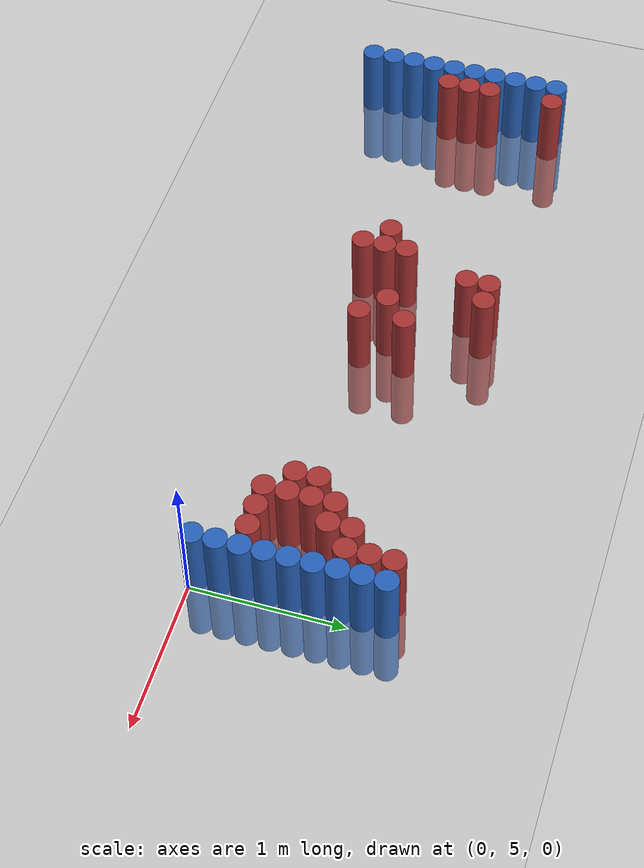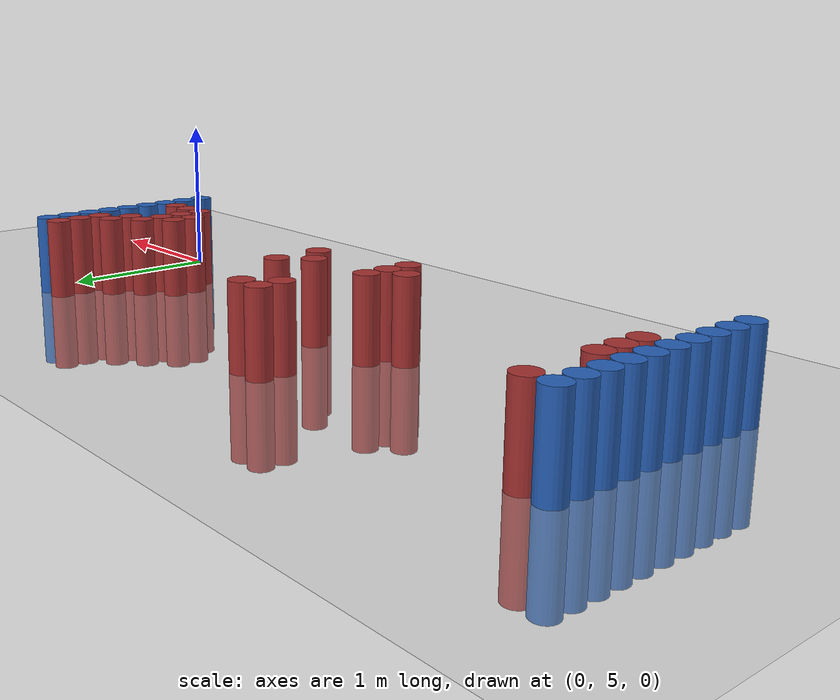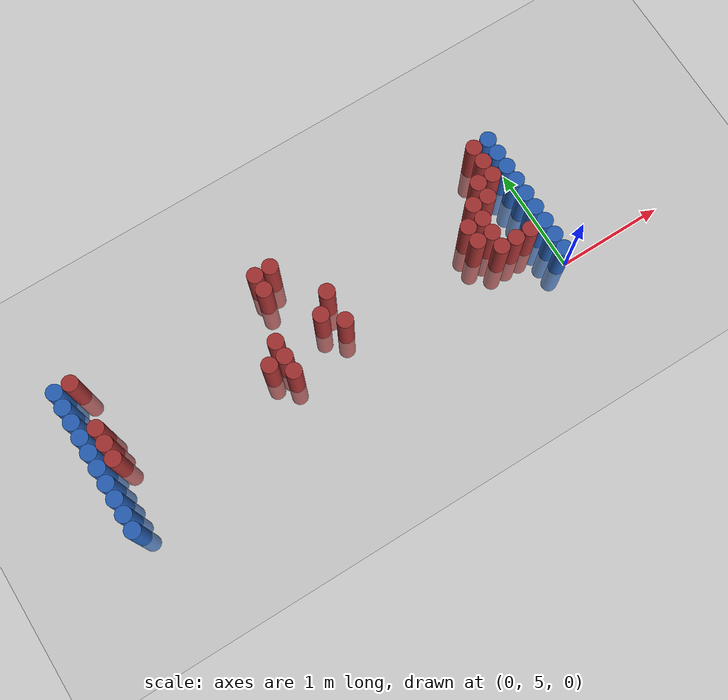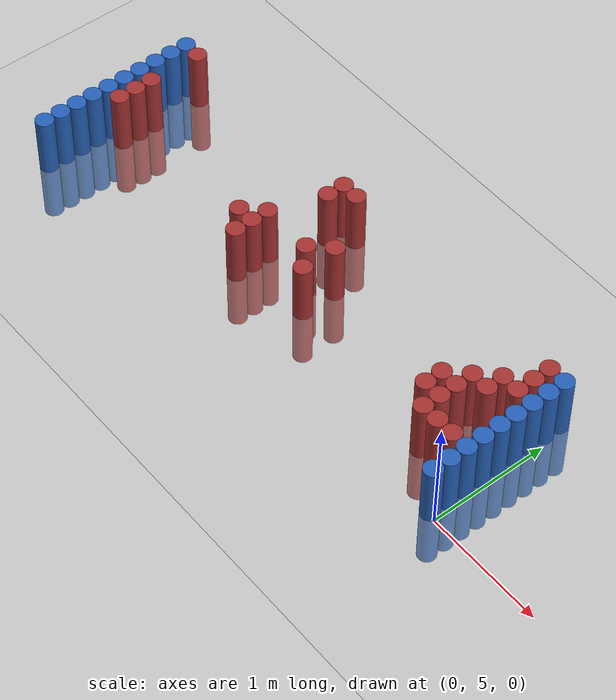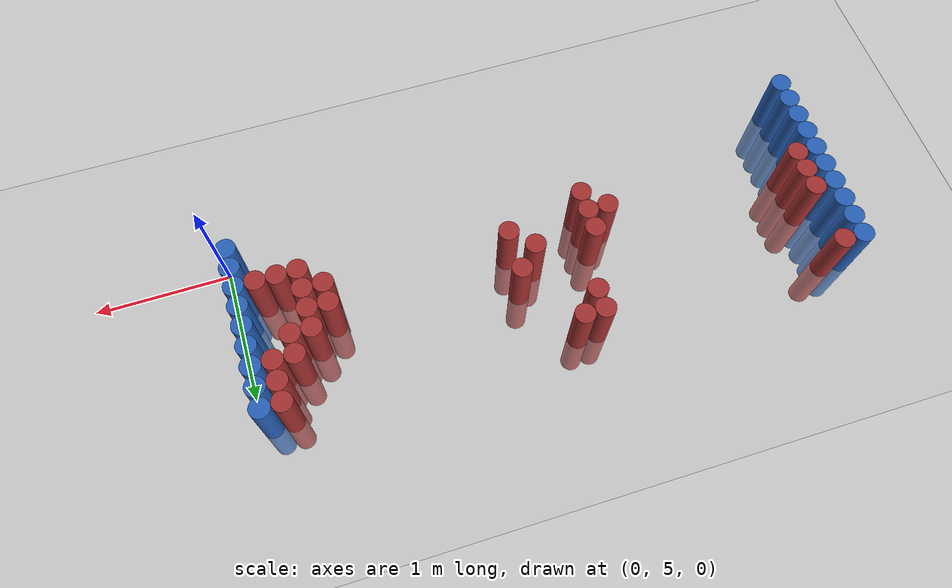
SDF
<sdf version="1.6">
 <world name="default">
  <model name="ground_plane">
   <static>1</static>
   <link name="link">
    <collision name="collision">
     <geometry><plane><normal>0 0 1</normal><size>100 100</size></plane></geometry>
     <surface><friction><ode><mu>100</mu><mu2>50</mu2></ode></friction></surface>
    </collision>
    <visual name="visual">
     <cast_shadows>0</cast_shadows>
     <geometry><plane><normal>0 0 1</normal><size>100 100</size></plane></geometry>
     <material>
      <script><uri>file://media/materials/scripts/gazebo.material</uri><name>Gazebo/Grey</name></script>
     </material>
    </visual>
   </link>
  </model>
  <model name="unit_cylinder_93">
   <static>1</static>
   <pose>-4.425000 4.875000 0.000000 0.000000 0.000000 0.000000</pose>
   <link name="link">
    <inertial>
     <mass>1</mass>
     <inertia><ixx>0.145833</ixx><ixy>0</ixy><ixz>0</ixz><iyy>0.145833</iyy><iyz>0</iyz><izz>0.125</izz></inertia>
    </inertial>
    <collision name="collision">
     <geometry><cylinder><radius>0.075000</radius><length>1</length></cylinder></geometry>
    </collision>
    <visual name="visual">
     <geometry><cylinder><radius>0.075000</radius><length>1</length></cylinder></geometry>
     <material>
      <ambient>0.152000 0.379000 0.720000 1</ambient>
      <diffuse>0.152000 0.379000 0.720000 1</diffuse>
     </material>
     <material>
      <script><name>Gazebo/Grey</name><uri>file://media/materials/scripts/gazebo.material</uri></script>
     </material>
    </visual>
   </link>
  </model>
  <model name="unit_cylinder_94">
   <static>1</static>
   <pose>-0.075000 5.025000 0.000000 0.000000 0.000000 0.000000</pose>
   <link name="link">
    <inertial>
     <mass>1</mass>
     <inertia><ixx>0.145833</ixx><ixy>0</ixy><ixz>0</ixz><iyy>0.145833</iyy><iyz>0</iyz><izz>0.125</izz></inertia>
    </inertial>
    <collision name="collision">
     <geometry><cylinder><radius>0.075000</radius><length>1</length></cylinder></geometry>
    </collision>
    <visual name="visual">
     <geometry><cylinder><radius>0.075000</radius><length>1</length></cylinder></geometry>
     <material>
      <ambient>0.152000 0.379000 0.720000 1</ambient>
      <diffuse>0.152000 0.379000 0.720000 1</diffuse>
     </material>
     <material>
      <script><name>Gazebo/Grey</name><uri>file://media/materials/scripts/gazebo.material</uri></script>
     </material>
    </visual>
   </link>
  </model>
  <model name="unit_cylinder_95">
   <static>1</static>
   <pose>-4.425000 5.025000 0.000000 0.000000 0.000000 0.000000</pose>
   <link name="link">
    <inertial>
     <mass>1</mass>
     <inertia><ixx>0.145833</ixx><ixy>0</ixy><ixz>0</ixz><iyy>0.145833</iyy><iyz>0</iyz><izz>0.125</izz></inertia>
    </inertial>
    <collision name="collision">
     <geometry><cylinder><radius>0.075000</radius><length>1</length></cylinder></geometry>
    </collision>
    <visual name="visual">
     <geometry><cylinder><radius>0.075000</radius><length>1</length></cylinder></geometry>
     <material>
      <ambient>0.152000 0.379000 0.720000 1</ambient>
      <diffuse>0.152000 0.379000 0.720000 1</diffuse>
     </material>
     <material>
      <script><name>Gazebo/Grey</name><uri>file://media/materials/scripts/gazebo.material</uri></script>
     </material>
    </visual>
   </link>
  </model>
  <model name="unit_cylinder_96">
   <static>1</static>
   <pose>-4.425000 5.175000 0.000000 0.000000 0.000000 0.000000</pose>
   <link name="link">
    <inertial>
     <mass>1</mass>
     <inertia><ixx>0.145833</ixx><ixy>0</ixy><ixz>0</ixz><iyy>0.145833</iyy><iyz>0</iyz><izz>0.125</izz></inertia>
    </inertial>
    <collision name="collision">
     <geometry><cylinder><radius>0.075000</radius><length>1</length></cylinder></geometry>
    </collision>
    <visual name="visual">
     <geometry><cylinder><radius>0.075000</radius><length>1</length></cylinder></geometry>
     <material>
      <ambient>0.152000 0.379000 0.720000 1</ambient>
      <diffuse>0.152000 0.379000 0.720000 1</diffuse>
     </material>
     <material>
      <script><name>Gazebo/Grey</name><uri>file://media/materials/scripts/gazebo.material</uri></script>
     </material>
    </visual>
   </link>
  </model>
  <model name="unit_cylinder_97">
   <static>1</static>
   <pose>-4.425000 5.325000 0.000000 0.000000 0.000000 0.000000</pose>
   <link name="link">
    <inertial>
     <mass>1</mass>
     <inertia><ixx>0.145833</ixx><ixy>0</ixy><ixz>0</ixz><iyy>0.145833</iyy><iyz>0</iyz><izz>0.125</izz></inertia>
    </inertial>
    <collision name="collision">
     <geometry><cylinder><radius>0.075000</radius><length>1</length></cylinder></geometry>
    </collision>
    <visual name="visual">
     <geometry><cylinder><radius>0.075000</radius><length>1</length></cylinder></geometry>
     <material>
      <ambient>0.152000 0.379000 0.720000 1</ambient>
      <diffuse>0.152000 0.379000 0.720000 1</diffuse>
     </material>
     <material>
      <script><name>Gazebo/Grey</name><uri>file://media/materials/scripts/gazebo.material</uri></script>
     </material>
    </visual>
   </link>
  </model>
  <model name="unit_cylinder_98">
   <static>1</static>
   <pose>-4.425000 5.475000 0.000000 0.000000 0.000000 0.000000</pose>
   <link name="link">
    <inertial>
     <mass>1</mass>
     <inertia><ixx>0.145833</ixx><ixy>0</ixy><ixz>0</ixz><iyy>0.145833</iyy><iyz>0</iyz><izz>0.125</izz></inertia>
    </inertial>
    <collision name="collision">
     <geometry><cylinder><radius>0.075000</radius><length>1</length></cylinder></geometry>
    </collision>
    <visual name="visual">
     <geometry><cylinder><radius>0.075000</radius><length>1</length></cylinder></geometry>
     <material>
      <ambient>0.152000 0.379000 0.720000 1</ambient>
      <diffuse>0.152000 0.379000 0.720000 1</diffuse>
     </material>
     <material>
      <script><name>Gazebo/Grey</name><uri>file://media/materials/scripts/gazebo.material</uri></script>
     </material>
    </visual>
   </link>
  </model>
  <model name="unit_cylinder_99">
   <static>1</static>
   <pose>-4.425000 5.625000 0.000000 0.000000 0.000000 0.000000</pose>
   <link name="link">
    <inertial>
     <mass>1</mass>
     <inertia><ixx>0.145833</ixx><ixy>0</ixy><ixz>0</ixz><iyy>0.145833</iyy><iyz>0</iyz><izz>0.125</izz></inertia>
    </inertial>
    <collision name="collision">
     <geometry><cylinder><radius>0.075000</radius><length>1</length></cylinder></geometry>
    </collision>
    <visual name="visual">
     <geometry><cylinder><radius>0.075000</radius><length>1</length></cylinder></geometry>
     <material>
      <ambient>0.152000 0.379000 0.720000 1</ambient>
      <diffuse>0.152000 0.379000 0.720000 1</diffuse>
     </material>
     <material>
      <script><name>Gazebo/Grey</name><uri>file://media/materials/scripts/gazebo.material</uri></script>
     </material>
    </visual>
   </link>
  </model>
  <model name="unit_cylinder_100">
   <static>1</static>
   <pose>-4.425000 5.775000 0.000000 0.000000 0.000000 0.000000</pose>
   <link name="link">
    <inertial>
     <mass>1</mass>
     <inertia><ixx>0.145833</ixx><ixy>0</ixy><ixz>0</ixz><iyy>0.145833</iyy><iyz>0</iyz><izz>0.125</izz></inertia>
    </inertial>
    <collision name="collision">
     <geometry><cylinder><radius>0.075000</radius><length>1</length></cylinder></geometry>
    </collision>
    <visual name="visual">
     <geometry><cylinder><radius>0.075000</radius><length>1</length></cylinder></geometry>
     <material>
      <ambient>0.152000 0.379000 0.720000 1</ambient>
      <diffuse>0.152000 0.379000 0.720000 1</diffuse>
     </material>
     <material>
      <script><name>Gazebo/Grey</name><uri>file://media/materials/scripts/gazebo.material</uri></script>
     </material>
    </visual>
   </link>
  </model>
  <model name="unit_cylinder_101">
   <static>1</static>
   <pose>-4.425000 5.925000 0.000000 0.000000 0.000000 0.000000</pose>
   <link name="link">
    <inertial>
     <mass>1</mass>
     <inertia><ixx>0.145833</ixx><ixy>0</ixy><ixz>0</ixz><iyy>0.145833</iyy><iyz>0</iyz><izz>0.125</izz></inertia>
    </inertial>
    <collision name="collision">
     <geometry><cylinder><radius>0.075000</radius><length>1</length></cylinder></geometry>
    </collision>
    <visual name="visual">
     <geometry><cylinder><radius>0.075000</radius><length>1</length></cylinder></geometry>
     <material>
      <ambient>0.152000 0.379000 0.720000 1</ambient>
      <diffuse>0.152000 0.379000 0.720000 1</diffuse>
     </material>
     <material>
      <script><name>Gazebo/Grey</name><uri>file://media/materials/scripts/gazebo.material</uri></script>
     </material>
    </visual>
   </link>
  </model>
  <model name="unit_cylinder_102">
   <static>1</static>
   <pose>-4.425000 6.075000 0.000000 0.000000 0.000000 0.000000</pose>
   <link name="link">
    <inertial>
     <mass>1</mass>
     <inertia><ixx>0.145833</ixx><ixy>0</ixy><ixz>0</ixz><iyy>0.145833</iyy><iyz>0</iyz><izz>0.125</izz></inertia>
    </inertial>
    <collision name="collision">
     <geometry><cylinder><radius>0.075000</radius><length>1</length></cylinder></geometry>
    </collision>
    <visual name="visual">
     <geometry><cylinder><radius>0.075000</radius><length>1</length></cylinder></geometry>
     <material>
      <ambient>0.152000 0.379000 0.720000 1</ambient>
      <diffuse>0.152000 0.379000 0.720000 1</diffuse>
     </material>
     <material>
      <script><name>Gazebo/Grey</name><uri>file://media/materials/scripts/gazebo.material</uri></script>
     </material>
    </visual>
   </link>
  </model>
  <model name="unit_cylinder_103">
   <static>1</static>
   <pose>-4.425000 6.225000 0.000000 0.000000 0.000000 0.000000</pose>
   <link name="link">
    <inertial>
     <mass>1</mass>
     <inertia><ixx>0.145833</ixx><ixy>0</ixy><ixz>0</ixz><iyy>0.145833</iyy><iyz>0</iyz><izz>0.125</izz></inertia>
    </inertial>
    <collision name="collision">
     <geometry><cylinder><radius>0.075000</radius><length>1</length></cylinder></geometry>
    </collision>
    <visual name="visual">
     <geometry><cylinder><radius>0.075000</radius><length>1</length></cylinder></geometry>
     <material>
      <ambient>0.152000 0.379000 0.720000 1</ambient>
      <diffuse>0.152000 0.379000 0.720000 1</diffuse>
     </material>
     <material>
      <script><name>Gazebo/Grey</name><uri>file://media/materials/scripts/gazebo.material</uri></script>
     </material>
    </visual>
   </link>
  </model>
  <model name="unit_cylinder_126">
   <static>1</static>
   <pose>-4.275000 5.475000 0.000000 0.000000 0.000000 0.000000</pose>
   <link name="link">
    <inertial>
     <mass>1</mass>
     <inertia><ixx>0.145833</ixx><ixy>0</ixy><ixz>0</ixz><iyy>0.145833</iyy><iyz>0</iyz><izz>0.125</izz></inertia>
    </inertial>
    <collision name="collision">
     <geometry><cylinder><radius>0.075000</radius><length>1</length></cylinder></geometry>
    </collision>
    <visual name="visual">
     <geometry><cylinder><radius>0.075000</radius><length>1</length></cylinder></geometry>
     <material>
      <ambient>0.648000 0.192000 0.192000 1</ambient>
      <diffuse>0.648000 0.192000 0.192000 1</diffuse>
     </material>
     <material>
      <script><name>Gazebo/Grey</name><uri>file://media/materials/scripts/gazebo.material</uri></script>
     </material>
    </visual>
   </link>
  </model>
  <model name="unit_cylinder_127">
   <static>1</static>
   <pose>-4.275000 5.625000 0.000000 0.000000 0.000000 0.000000</pose>
   <link name="link">
    <inertial>
     <mass>1</mass>
     <inertia><ixx>0.145833</ixx><ixy>0</ixy><ixz>0</ixz><iyy>0.145833</iyy><iyz>0</iyz><izz>0.125</izz></inertia>
    </inertial>
    <collision name="collision">
     <geometry><cylinder><radius>0.075000</radius><length>1</length></cylinder></geometry>
    </collision>
    <visual name="visual">
     <geometry><cylinder><radius>0.075000</radius><length>1</length></cylinder></geometry>
     <material>
      <ambient>0.648000 0.192000 0.192000 1</ambient>
      <diffuse>0.648000 0.192000 0.192000 1</diffuse>
     </material>
     <material>
      <script><name>Gazebo/Grey</name><uri>file://media/materials/scripts/gazebo.material</uri></script>
     </material>
    </visual>
   </link>
  </model>
  <model name="unit_cylinder_128">
   <static>1</static>
   <pose>-4.275000 5.775000 0.000000 0.000000 0.000000 0.000000</pose>
   <link name="link">
    <inertial>
     <mass>1</mass>
     <inertia><ixx>0.145833</ixx><ixy>0</ixy><ixz>0</ixz><iyy>0.145833</iyy><iyz>0</iyz><izz>0.125</izz></inertia>
    </inertial>
    <collision name="collision">
     <geometry><cylinder><radius>0.075000</radius><length>1</length></cylinder></geometry>
    </collision>
    <visual name="visual">
     <geometry><cylinder><radius>0.075000</radius><length>1</length></cylinder></geometry>
     <material>
      <ambient>0.648000 0.192000 0.192000 1</ambient>
      <diffuse>0.648000 0.192000 0.192000 1</diffuse>
     </material>
     <material>
      <script><name>Gazebo/Grey</name><uri>file://media/materials/scripts/gazebo.material</uri></script>
     </material>
    </visual>
   </link>
  </model>
  <model name="unit_cylinder_129">
   <static>1</static>
   <pose>-4.275000 6.225000 0.000000 0.000000 0.000000 0.000000</pose>
   <link name="link">
    <inertial>
     <mass>1</mass>
     <inertia><ixx>0.145833</ixx><ixy>0</ixy><ixz>0</ixz><iyy>0.145833</iyy><iyz>0</iyz><izz>0.125</izz></inertia>
    </inertial>
    <collision name="collision">
     <geometry><cylinder><radius>0.075000</radius><length>1</length></cylinder></geometry>
    </collision>
    <visual name="visual">
     <geometry><cylinder><radius>0.075000</radius><length>1</length></cylinder></geometry>
     <material>
      <ambient>0.648000 0.192000 0.192000 1</ambient>
      <diffuse>0.648000 0.192000 0.192000 1</diffuse>
     </material>
     <material>
      <script><name>Gazebo/Grey</name><uri>file://media/materials/scripts/gazebo.material</uri></script>
     </material>
    </visual>
   </link>
  </model>
  <model name="unit_cylinder_173">
   <static>1</static>
   <pose>-2.775000 5.475000 0.000000 0.000000 0.000000 0.000000</pose>
   <link name="link">
    <inertial>
     <mass>1</mass>
     <inertia><ixx>0.145833</ixx><ixy>0</ixy><ixz>0</ixz><iyy>0.145833</iyy><iyz>0</iyz><izz>0.125</izz></inertia>
    </inertial>
    <collision name="collision">
     <geometry><cylinder><radius>0.075000</radius><length>1</length></cylinder></geometry>
    </collision>
    <visual name="visual">
     <geometry><cylinder><radius>0.075000</radius><length>1</length></cylinder></geometry>
     <material>
      <ambient>0.648000 0.192000 0.192000 1</ambient>
      <diffuse>0.648000 0.192000 0.192000 1</diffuse>
     </material>
     <material>
      <script><name>Gazebo/Grey</name><uri>file://media/materials/scripts/gazebo.material</uri></script>
     </material>
    </visual>
   </link>
  </model>
  <model name="unit_cylinder_178">
   <static>1</static>
   <pose>-2.625000 5.325000 0.000000 0.000000 0.000000 0.000000</pose>
   <link name="link">
    <inertial>
     <mass>1</mass>
     <inertia><ixx>0.145833</ixx><ixy>0</ixy><ixz>0</ixz><iyy>0.145833</iyy><iyz>0</iyz><izz>0.125</izz></inertia>
    </inertial>
    <collision name="collision">
     <geometry><cylinder><radius>0.075000</radius><length>1</length></cylinder></geometry>
    </collision>
    <visual name="visual">
     <geometry><cylinder><radius>0.075000</radius><length>1</length></cylinder></geometry>
     <material>
      <ambient>0.648000 0.192000 0.192000 1</ambient>
      <diffuse>0.648000 0.192000 0.192000 1</diffuse>
     </material>
     <material>
      <script><name>Gazebo/Grey</name><uri>file://media/materials/scripts/gazebo.material</uri></script>
     </material>
    </visual>
   </link>
  </model>
  <model name="unit_cylinder_179">
   <static>1</static>
   <pose>-2.625000 5.475000 0.000000 0.000000 0.000000 0.000000</pose>
   <link name="link">
    <inertial>
     <mass>1</mass>
     <inertia><ixx>0.145833</ixx><ixy>0</ixy><ixz>0</ixz><iyy>0.145833</iyy><iyz>0</iyz><izz>0.125</izz></inertia>
    </inertial>
    <collision name="collision">
     <geometry><cylinder><radius>0.075000</radius><length>1</length></cylinder></geometry>
    </collision>
    <visual name="visual">
     <geometry><cylinder><radius>0.075000</radius><length>1</length></cylinder></geometry>
     <material>
      <ambient>0.648000 0.192000 0.192000 1</ambient>
      <diffuse>0.648000 0.192000 0.192000 1</diffuse>
     </material>
     <material>
      <script><name>Gazebo/Grey</name><uri>file://media/materials/scripts/gazebo.material</uri></script>
     </material>
    </visual>
   </link>
  </model>
  <model name="unit_cylinder_180">
   <static>1</static>
   <pose>-2.625000 5.625000 0.000000 0.000000 0.000000 0.000000</pose>
   <link name="link">
    <inertial>
     <mass>1</mass>
     <inertia><ixx>0.145833</ixx><ixy>0</ixy><ixz>0</ixz><iyy>0.145833</iyy><iyz>0</iyz><izz>0.125</izz></inertia>
    </inertial>
    <collision name="collision">
     <geometry><cylinder><radius>0.075000</radius><length>1</length></cylinder></geometry>
    </collision>
    <visual name="visual">
     <geometry><cylinder><radius>0.075000</radius><length>1</length></cylinder></geometry>
     <material>
      <ambient>0.648000 0.192000 0.192000 1</ambient>
      <diffuse>0.648000 0.192000 0.192000 1</diffuse>
     </material>
     <material>
      <script><name>Gazebo/Grey</name><uri>file://media/materials/scripts/gazebo.material</uri></script>
     </material>
    </visual>
   </link>
  </model>
  <model name="unit_cylinder_181">
   <static>1</static>
   <pose>-2.475000 6.075000 0.000000 0.000000 0.000000 0.000000</pose>
   <link name="link">
    <inertial>
     <mass>1</mass>
     <inertia><ixx>0.145833</ixx><ixy>0</ixy><ixz>0</ixz><iyy>0.145833</iyy><iyz>0</iyz><izz>0.125</izz></inertia>
    </inertial>
    <collision name="collision">
     <geometry><cylinder><radius>0.075000</radius><length>1</length></cylinder></geometry>
    </collision>
    <visual name="visual">
     <geometry><cylinder><radius>0.075000</radius><length>1</length></cylinder></geometry>
     <material>
      <ambient>0.648000 0.192000 0.192000 1</ambient>
      <diffuse>0.648000 0.192000 0.192000 1</diffuse>
     </material>
     <material>
      <script><name>Gazebo/Grey</name><uri>file://media/materials/scripts/gazebo.material</uri></script>
     </material>
    </visual>
   </link>
  </model>
  <model name="unit_cylinder_182">
   <static>1</static>
   <pose>-2.475000 6.225000 0.000000 0.000000 0.000000 0.000000</pose>
   <link name="link">
    <inertial>
     <mass>1</mass>
     <inertia><ixx>0.145833</ixx><ixy>0</ixy><ixz>0</ixz><iyy>0.145833</iyy><iyz>0</iyz><izz>0.125</izz></inertia>
    </inertial>
    <collision name="collision">
     <geometry><cylinder><radius>0.075000</radius><length>1</length></cylinder></geometry>
    </collision>
    <visual name="visual">
     <geometry><cylinder><radius>0.075000</radius><length>1</length></cylinder></geometry>
     <material>
      <ambient>0.648000 0.192000 0.192000 1</ambient>
      <diffuse>0.648000 0.192000 0.192000 1</diffuse>
     </material>
     <material>
      <script><name>Gazebo/Grey</name><uri>file://media/materials/scripts/gazebo.material</uri></script>
     </material>
    </visual>
   </link>
  </model>
  <model name="unit_cylinder_183">
   <static>1</static>
   <pose>-2.325000 6.225000 0.000000 0.000000 0.000000 0.000000</pose>
   <link name="link">
    <inertial>
     <mass>1</mass>
     <inertia><ixx>0.145833</ixx><ixy>0</ixy><ixz>0</ixz><iyy>0.145833</iyy><iyz>0</iyz><izz>0.125</izz></inertia>
    </inertial>
    <collision name="collision">
     <geometry><cylinder><radius>0.075000</radius><length>1</length></cylinder></geometry>
    </collision>
    <visual name="visual">
     <geometry><cylinder><radius>0.075000</radius><length>1</length></cylinder></geometry>
     <material>
      <ambient>0.648000 0.192000 0.192000 1</ambient>
      <diffuse>0.648000 0.192000 0.192000 1</diffuse>
     </material>
     <material>
      <script><name>Gazebo/Grey</name><uri>file://media/materials/scripts/gazebo.material</uri></script>
     </material>
    </visual>
   </link>
  </model>
  <model name="unit_cylinder_189">
   <static>1</static>
   <pose>-2.175000 5.625000 0.000000 0.000000 0.000000 0.000000</pose>
   <link name="link">
    <inertial>
     <mass>1</mass>
     <inertia><ixx>0.145833</ixx><ixy>0</ixy><ixz>0</ixz><iyy>0.145833</iyy><iyz>0</iyz><izz>0.125</izz></inertia>
    </inertial>
    <collision name="collision">
     <geometry><cylinder><radius>0.075000</radius><length>1</length></cylinder></geometry>
    </collision>
    <visual name="visual">
     <geometry><cylinder><radius>0.075000</radius><length>1</length></cylinder></geometry>
     <material>
      <ambient>0.648000 0.192000 0.192000 1</ambient>
      <diffuse>0.648000 0.192000 0.192000 1</diffuse>
     </material>
     <material>
      <script><name>Gazebo/Grey</name><uri>file://media/materials/scripts/gazebo.material</uri></script>
     </material>
    </visual>
   </link>
  </model>
  <model name="unit_cylinder_197">
   <static>1</static>
   <pose>-2.025000 5.475000 0.000000 0.000000 0.000000 0.000000</pose>
   <link name="link">
    <inertial>
     <mass>1</mass>
     <inertia><ixx>0.145833</ixx><ixy>0</ixy><ixz>0</ixz><iyy>0.145833</iyy><iyz>0</iyz><izz>0.125</izz></inertia>
    </inertial>
    <collision name="collision">
     <geometry><cylinder><radius>0.075000</radius><length>1</length></cylinder></geometry>
    </collision>
    <visual name="visual">
     <geometry><cylinder><radius>0.075000</radius><length>1</length></cylinder></geometry>
     <material>
      <ambient>0.648000 0.192000 0.192000 1</ambient>
      <diffuse>0.648000 0.192000 0.192000 1</diffuse>
     </material>
     <material>
      <script><name>Gazebo/Grey</name><uri>file://media/materials/scripts/gazebo.material</uri></script>
     </material>
    </visual>
   </link>
  </model>
  <model name="unit_cylinder_198">
   <static>1</static>
   <pose>-2.025000 5.775000 0.000000 0.000000 0.000000 0.000000</pose>
   <link name="link">
    <inertial>
     <mass>1</mass>
     <inertia><ixx>0.145833</ixx><ixy>0</ixy><ixz>0</ixz><iyy>0.145833</iyy><iyz>0</iyz><izz>0.125</izz></inertia>
    </inertial>
    <collision name="collision">
     <geometry><cylinder><radius>0.075000</radius><length>1</length></cylinder></geometry>
    </collision>
    <visual name="visual">
     <geometry><cylinder><radius>0.075000</radius><length>1</length></cylinder></geometry>
     <material>
      <ambient>0.648000 0.192000 0.192000 1</ambient>
      <diffuse>0.648000 0.192000 0.192000 1</diffuse>
     </material>
     <material>
      <script><name>Gazebo/Grey</name><uri>file://media/materials/scripts/gazebo.material</uri></script>
     </material>
    </visual>
   </link>
  </model>
  <model name="unit_cylinder_213">
   <static>1</static>
   <pose>-0.675000 5.475000 0.000000 0.000000 0.000000 0.000000</pose>
   <link name="link">
    <inertial>
     <mass>1</mass>
     <inertia><ixx>0.145833</ixx><ixy>0</ixy><ixz>0</ixz><iyy>0.145833</iyy><iyz>0</iyz><izz>0.125</izz></inertia>
    </inertial>
    <collision name="collision">
     <geometry><cylinder><radius>0.075000</radius><length>1</length></cylinder></geometry>
    </collision>
    <visual name="visual">
     <geometry><cylinder><radius>0.075000</radius><length>1</length></cylinder></geometry>
     <material>
      <ambient>0.648000 0.192000 0.192000 1</ambient>
      <diffuse>0.648000 0.192000 0.192000 1</diffuse>
     </material>
     <material>
      <script><name>Gazebo/Grey</name><uri>file://media/materials/scripts/gazebo.material</uri></script>
     </material>
    </visual>
   </link>
  </model>
  <model name="unit_cylinder_214">
   <static>1</static>
   <pose>-0.675000 5.625000 0.000000 0.000000 0.000000 0.000000</pose>
   <link name="link">
    <inertial>
     <mass>1</mass>
     <inertia><ixx>0.145833</ixx><ixy>0</ixy><ixz>0</ixz><iyy>0.145833</iyy><iyz>0</iyz><izz>0.125</izz></inertia>
    </inertial>
    <collision name="collision">
     <geometry><cylinder><radius>0.075000</radius><length>1</length></cylinder></geometry>
    </collision>
    <visual name="visual">
     <geometry><cylinder><radius>0.075000</radius><length>1</length></cylinder></geometry>
     <material>
      <ambient>0.648000 0.192000 0.192000 1</ambient>
      <diffuse>0.648000 0.192000 0.192000 1</diffuse>
     </material>
     <material>
      <script><name>Gazebo/Grey</name><uri>file://media/materials/scripts/gazebo.material</uri></script>
     </material>
    </visual>
   </link>
  </model>
  <model name="unit_cylinder_216">
   <static>1</static>
   <pose>-0.525000 5.325000 0.000000 0.000000 0.000000 0.000000</pose>
   <link name="link">
    <inertial>
     <mass>1</mass>
     <inertia><ixx>0.145833</ixx><ixy>0</ixy><ixz>0</ixz><iyy>0.145833</iyy><iyz>0</iyz><izz>0.125</izz></inertia>
    </inertial>
    <collision name="collision">
     <geometry><cylinder><radius>0.075000</radius><length>1</length></cylinder></geometry>
    </collision>
    <visual name="visual">
     <geometry><cylinder><radius>0.075000</radius><length>1</length></cylinder></geometry>
     <material>
      <ambient>0.648000 0.192000 0.192000 1</ambient>
      <diffuse>0.648000 0.192000 0.192000 1</diffuse>
     </material>
     <material>
      <script><name>Gazebo/Grey</name><uri>file://media/materials/scripts/gazebo.material</uri></script>
     </material>
    </visual>
   </link>
  </model>
  <model name="unit_cylinder_217">
   <static>1</static>
   <pose>-0.525000 5.475000 0.000000 0.000000 0.000000 0.000000</pose>
   <link name="link">
    <inertial>
     <mass>1</mass>
     <inertia><ixx>0.145833</ixx><ixy>0</ixy><ixz>0</ixz><iyy>0.145833</iyy><iyz>0</iyz><izz>0.125</izz></inertia>
    </inertial>
    <collision name="collision">
     <geometry><cylinder><radius>0.075000</radius><length>1</length></cylinder></geometry>
    </collision>
    <visual name="visual">
     <geometry><cylinder><radius>0.075000</radius><length>1</length></cylinder></geometry>
     <material>
      <ambient>0.648000 0.192000 0.192000 1</ambient>
      <diffuse>0.648000 0.192000 0.192000 1</diffuse>
     </material>
     <material>
      <script><name>Gazebo/Grey</name><uri>file://media/materials/scripts/gazebo.material</uri></script>
     </material>
    </visual>
   </link>
  </model>
  <model name="unit_cylinder_218">
   <static>1</static>
   <pose>-0.525000 5.625000 0.000000 0.000000 0.000000 0.000000</pose>
   <link name="link">
    <inertial>
     <mass>1</mass>
     <inertia><ixx>0.145833</ixx><ixy>0</ixy><ixz>0</ixz><iyy>0.145833</iyy><iyz>0</iyz><izz>0.125</izz></inertia>
    </inertial>
    <collision name="collision">
     <geometry><cylinder><radius>0.075000</radius><length>1</length></cylinder></geometry>
    </collision>
    <visual name="visual">
     <geometry><cylinder><radius>0.075000</radius><length>1</length></cylinder></geometry>
     <material>
      <ambient>0.648000 0.192000 0.192000 1</ambient>
      <diffuse>0.648000 0.192000 0.192000 1</diffuse>
     </material>
     <material>
      <script><name>Gazebo/Grey</name><uri>file://media/materials/scripts/gazebo.material</uri></script>
     </material>
    </visual>
   </link>
  </model>
  <model name="unit_cylinder_219">
   <static>1</static>
   <pose>-0.525000 5.775000 0.000000 0.000000 0.000000 0.000000</pose>
   <link name="link">
    <inertial>
     <mass>1</mass>
     <inertia><ixx>0.145833</ixx><ixy>0</ixy><ixz>0</ixz><iyy>0.145833</iyy><iyz>0</iyz><izz>0.125</izz></inertia>
    </inertial>
    <collision name="collision">
     <geometry><cylinder><radius>0.075000</radius><length>1</length></cylinder></geometry>
    </collision>
    <visual name="visual">
     <geometry><cylinder><radius>0.075000</radius><length>1</length></cylinder></geometry>
     <material>
      <ambient>0.648000 0.192000 0.192000 1</ambient>
      <diffuse>0.648000 0.192000 0.192000 1</diffuse>
     </material>
     <material>
      <script><name>Gazebo/Grey</name><uri>file://media/materials/scripts/gazebo.material</uri></script>
     </material>
    </visual>
   </link>
  </model>
  <model name="unit_cylinder_221">
   <static>1</static>
   <pose>-0.375000 5.325000 0.000000 0.000000 0.000000 0.000000</pose>
   <link name="link">
    <inertial>
     <mass>1</mass>
     <inertia><ixx>0.145833</ixx><ixy>0</ixy><ixz>0</ixz><iyy>0.145833</iyy><iyz>0</iyz><izz>0.125</izz></inertia>
    </inertial>
    <collision name="collision">
     <geometry><cylinder><radius>0.075000</radius><length>1</length></cylinder></geometry>
    </collision>
    <visual name="visual">
     <geometry><cylinder><radius>0.075000</radius><length>1</length></cylinder></geometry>
     <material>
      <ambient>0.648000 0.192000 0.192000 1</ambient>
      <diffuse>0.648000 0.192000 0.192000 1</diffuse>
     </material>
     <material>
      <script><name>Gazebo/Grey</name><uri>file://media/materials/scripts/gazebo.material</uri></script>
     </material>
    </visual>
   </link>
  </model>
  <model name="unit_cylinder_222">
   <static>1</static>
   <pose>-0.375000 5.775000 0.000000 0.000000 0.000000 0.000000</pose>
   <link name="link">
    <inertial>
     <mass>1</mass>
     <inertia><ixx>0.145833</ixx><ixy>0</ixy><ixz>0</ixz><iyy>0.145833</iyy><iyz>0</iyz><izz>0.125</izz></inertia>
    </inertial>
    <collision name="collision">
     <geometry><cylinder><radius>0.075000</radius><length>1</length></cylinder></geometry>
    </collision>
    <visual name="visual">
     <geometry><cylinder><radius>0.075000</radius><length>1</length></cylinder></geometry>
     <material>
      <ambient>0.648000 0.192000 0.192000 1</ambient>
      <diffuse>0.648000 0.192000 0.192000 1</diffuse>
     </material>
     <material>
      <script><name>Gazebo/Grey</name><uri>file://media/materials/scripts/gazebo.material</uri></script>
     </material>
    </visual>
   </link>
  </model>
  <model name="unit_cylinder_223">
   <static>1</static>
   <pose>-0.375000 5.925000 0.000000 0.000000 0.000000 0.000000</pose>
   <link name="link">
    <inertial>
     <mass>1</mass>
     <inertia><ixx>0.145833</ixx><ixy>0</ixy><ixz>0</ixz><iyy>0.145833</iyy><iyz>0</iyz><izz>0.125</izz></inertia>
    </inertial>
    <collision name="collision">
     <geometry><cylinder><radius>0.075000</radius><length>1</length></cylinder></geometry>
    </collision>
    <visual name="visual">
     <geometry><cylinder><radius>0.075000</radius><length>1</length></cylinder></geometry>
     <material>
      <ambient>0.648000 0.192000 0.192000 1</ambient>
      <diffuse>0.648000 0.192000 0.192000 1</diffuse>
     </material>
     <material>
      <script><name>Gazebo/Grey</name><uri>file://media/materials/scripts/gazebo.material</uri></script>
     </material>
    </visual>
   </link>
  </model>
  <model name="unit_cylinder_228">
   <static>1</static>
   <pose>-0.225000 5.325000 0.000000 0.000000 0.000000 0.000000</pose>
   <link name="link">
    <inertial>
     <mass>1</mass>
     <inertia><ixx>0.145833</ixx><ixy>0</ixy><ixz>0</ixz><iyy>0.145833</iyy><iyz>0</iyz><izz>0.125</izz></inertia>
    </inertial>
    <collision name="collision">
     <geometry><cylinder><radius>0.075000</radius><length>1</length></cylinder></geometry>
    </collision>
    <visual name="visual">
     <geometry><cylinder><radius>0.075000</radius><length>1</length></cylinder></geometry>
     <material>
      <ambient>0.648000 0.192000 0.192000 1</ambient>
      <diffuse>0.648000 0.192000 0.192000 1</diffuse>
     </material>
     <material>
      <script><name>Gazebo/Grey</name><uri>file://media/materials/scripts/gazebo.material</uri></script>
     </material>
    </visual>
   </link>
  </model>
  <model name="unit_cylinder_229">
   <static>1</static>
   <pose>-0.225000 5.925000 0.000000 0.000000 0.000000 0.000000</pose>
   <link name="link">
    <inertial>
     <mass>1</mass>
     <inertia><ixx>0.145833</ixx><ixy>0</ixy><ixz>0</ixz><iyy>0.145833</iyy><iyz>0</iyz><izz>0.125</izz></inertia>
    </inertial>
    <collision name="collision">
     <geometry><cylinder><radius>0.075000</radius><length>1</length></cylinder></geometry>
    </collision>
    <visual name="visual">
     <geometry><cylinder><radius>0.075000</radius><length>1</length></cylinder></geometry>
     <material>
      <ambient>0.648000 0.192000 0.192000 1</ambient>
      <diffuse>0.648000 0.192000 0.192000 1</diffuse>
     </material>
     <material>
      <script><name>Gazebo/Grey</name><uri>file://media/materials/scripts/gazebo.material</uri></script>
     </material>
    </visual>
   </link>
  </model>
  <model name="unit_cylinder_230">
   <static>1</static>
   <pose>-0.225000 6.075000 0.000000 0.000000 0.000000 0.000000</pose>
   <link name="link">
    <inertial>
     <mass>1</mass>
     <inertia><ixx>0.145833</ixx><ixy>0</ixy><ixz>0</ixz><iyy>0.145833</iyy><iyz>0</iyz><izz>0.125</izz></inertia>
    </inertial>
    <collision name="collision">
     <geometry><cylinder><radius>0.075000</radius><length>1</length></cylinder></geometry>
    </collision>
    <visual name="visual">
     <geometry><cylinder><radius>0.075000</radius><length>1</length></cylinder></geometry>
     <material>
      <ambient>0.648000 0.192000 0.192000 1</ambient>
      <diffuse>0.648000 0.192000 0.192000 1</diffuse>
     </material>
     <material>
      <script><name>Gazebo/Grey</name><uri>file://media/materials/scripts/gazebo.material</uri></script>
     </material>
    </visual>
   </link>
  </model>
  <model name="unit_cylinder_231">
   <static>1</static>
   <pose>-0.225000 6.225000 0.000000 0.000000 0.000000 0.000000</pose>
   <link name="link">
    <inertial>
     <mass>1</mass>
     <inertia><ixx>0.145833</ixx><ixy>0</ixy><ixz>0</ixz><iyy>0.145833</iyy><iyz>0</iyz><izz>0.125</izz></inertia>
    </inertial>
    <collision name="collision">
     <geometry><cylinder><radius>0.075000</radius><length>1</length></cylinder></geometry>
    </collision>
    <visual name="visual">
     <geometry><cylinder><radius>0.075000</radius><length>1</length></cylinder></geometry>
     <material>
      <ambient>0.648000 0.192000 0.192000 1</ambient>
      <diffuse>0.648000 0.192000 0.192000 1</diffuse>
     </material>
     <material>
      <script><name>Gazebo/Grey</name><uri>file://media/materials/scripts/gazebo.material</uri></script>
     </material>
    </visual>
   </link>
  </model>
  <model name="unit_cylinder_247">
   <static>1</static>
   <pose>-0.075000 5.175000 0.000000 0.000000 0.000000 0.000000</pose>
   <link name="link">
    <inertial>
     <mass>1</mass>
     <inertia><ixx>0.145833</ixx><ixy>0</ixy><ixz>0</ixz><iyy>0.145833</iyy><iyz>0</iyz><izz>0.125</izz></inertia>
    </inertial>
    <collision name="collision">
     <geometry><cylinder><radius>0.075000</radius><length>1</length></cylinder></geometry>
    </collision>
    <visual name="visual">
     <geometry><cylinder><radius>0.075000</radius><length>1</length></cylinder></geometry>
     <material>
      <ambient>0.152000 0.379000 0.720000 1</ambient>
      <diffuse>0.152000 0.379000 0.720000 1</diffuse>
     </material>
     <material>
      <script><name>Gazebo/Grey</name><uri>file://media/materials/scripts/gazebo.material</uri></script>
     </material>
    </visual>
   </link>
  </model>
  <model name="unit_cylinder_248">
   <static>1</static>
   <pose>-0.075000 5.325000 0.000000 0.000000 0.000000 0.000000</pose>
   <link name="link">
    <inertial>
     <mass>1</mass>
     <inertia><ixx>0.145833</ixx><ixy>0</ixy><ixz>0</ixz><iyy>0.145833</iyy><iyz>0</iyz><izz>0.125</izz></inertia>
    </inertial>
    <collision name="collision">
     <geometry><cylinder><radius>0.075000</radius><length>1</length></cylinder></geometry>
    </collision>
    <visual name="visual">
     <geometry><cylinder><radius>0.075000</radius><length>1</length></cylinder></geometry>
     <material>
      <ambient>0.152000 0.379000 0.720000 1</ambient>
      <diffuse>0.152000 0.379000 0.720000 1</diffuse>
     </material>
     <material>
      <script><name>Gazebo/Grey</name><uri>file://media/materials/scripts/gazebo.material</uri></script>
     </material>
    </visual>
   </link>
  </model>
  <model name="unit_cylinder_249">
   <static>1</static>
   <pose>-0.075000 5.475000 0.000000 0.000000 0.000000 0.000000</pose>
   <link name="link">
    <inertial>
     <mass>1</mass>
     <inertia><ixx>0.145833</ixx><ixy>0</ixy><ixz>0</ixz><iyy>0.145833</iyy><iyz>0</iyz><izz>0.125</izz></inertia>
    </inertial>
    <collision name="collision">
     <geometry><cylinder><radius>0.075000</radius><length>1</length></cylinder></geometry>
    </collision>
    <visual name="visual">
     <geometry><cylinder><radius>0.075000</radius><length>1</length></cylinder></geometry>
     <material>
      <ambient>0.152000 0.379000 0.720000 1</ambient>
      <diffuse>0.152000 0.379000 0.720000 1</diffuse>
     </material>
     <material>
      <script><name>Gazebo/Grey</name><uri>file://media/materials/scripts/gazebo.material</uri></script>
     </material>
    </visual>
   </link>
  </model>
  <model name="unit_cylinder_250">
   <static>1</static>
   <pose>-0.075000 5.625000 0.000000 0.000000 0.000000 0.000000</pose>
   <link name="link">
    <inertial>
     <mass>1</mass>
     <inertia><ixx>0.145833</ixx><ixy>0</ixy><ixz>0</ixz><iyy>0.145833</iyy><iyz>0</iyz><izz>0.125</izz></inertia>
    </inertial>
    <collision name="collision">
     <geometry><cylinder><radius>0.075000</radius><length>1</length></cylinder></geometry>
    </collision>
    <visual name="visual">
     <geometry><cylinder><radius>0.075000</radius><length>1</length></cylinder></geometry>
     <material>
      <ambient>0.152000 0.379000 0.720000 1</ambient>
      <diffuse>0.152000 0.379000 0.720000 1</diffuse>
     </material>
     <material>
      <script><name>Gazebo/Grey</name><uri>file://media/materials/scripts/gazebo.material</uri></script>
     </material>
    </visual>
   </link>
  </model>
  <model name="unit_cylinder_251">
   <static>1</static>
   <pose>-0.075000 5.775000 0.000000 0.000000 0.000000 0.000000</pose>
   <link name="link">
    <inertial>
     <mass>1</mass>
     <inertia><ixx>0.145833</ixx><ixy>0</ixy><ixz>0</ixz><iyy>0.145833</iyy><iyz>0</iyz><izz>0.125</izz></inertia>
    </inertial>
    <collision name="collision">
     <geometry><cylinder><radius>0.075000</radius><length>1</length></cylinder></geometry>
    </collision>
    <visual name="visual">
     <geometry><cylinder><radius>0.075000</radius><length>1</length></cylinder></geometry>
     <material>
      <ambient>0.152000 0.379000 0.720000 1</ambient>
      <diffuse>0.152000 0.379000 0.720000 1</diffuse>
     </material>
     <material>
      <script><name>Gazebo/Grey</name><uri>file://media/materials/scripts/gazebo.material</uri></script>
     </material>
    </visual>
   </link>
  </model>
  <model name="unit_cylinder_252">
   <static>1</static>
   <pose>-0.075000 5.925000 0.000000 0.000000 0.000000 0.000000</pose>
   <link name="link">
    <inertial>
     <mass>1</mass>
     <inertia><ixx>0.145833</ixx><ixy>0</ixy><ixz>0</ixz><iyy>0.145833</iyy><iyz>0</iyz><izz>0.125</izz></inertia>
    </inertial>
    <collision name="collision">
     <geometry><cylinder><radius>0.075000</radius><length>1</length></cylinder></geometry>
    </collision>
    <visual name="visual">
     <geometry><cylinder><radius>0.075000</radius><length>1</length></cylinder></geometry>
     <material>
      <ambient>0.152000 0.379000 0.720000 1</ambient>
      <diffuse>0.152000 0.379000 0.720000 1</diffuse>
     </material>
     <material>
      <script><name>Gazebo/Grey</name><uri>file://media/materials/scripts/gazebo.material</uri></script>
     </material>
    </visual>
   </link>
  </model>
  <model name="unit_cylinder_253">
   <static>1</static>
   <pose>-0.075000 6.075000 0.000000 0.000000 0.000000 0.000000</pose>
   <link name="link">
    <inertial>
     <mass>1</mass>
     <inertia><ixx>0.145833</ixx><ixy>0</ixy><ixz>0</ixz><iyy>0.145833</iyy><iyz>0</iyz><izz>0.125</izz></inertia>
    </inertial>
    <collision name="collision">
     <geometry><cylinder><radius>0.075000</radius><length>1</length></cylinder></geometry>
    </collision>
    <visual name="visual">
     <geometry><cylinder><radius>0.075000</radius><length>1</length></cylinder></geometry>
     <material>
      <ambient>0.152000 0.379000 0.720000 1</ambient>
      <diffuse>0.152000 0.379000 0.720000 1</diffuse>
     </material>
     <material>
      <script><name>Gazebo/Grey</name><uri>file://media/materials/scripts/gazebo.material</uri></script>
     </material>
    </visual>
   </link>
  </model>
  <model name="unit_cylinder_254">
   <static>1</static>
   <pose>-0.075000 6.225000 0.000000 0.000000 0.000000 0.000000</pose>
   <link name="link">
    <inertial>
     <mass>1</mass>
     <inertia><ixx>0.145833</ixx><ixy>0</ixy><ixz>0</ixz><iyy>0.145833</iyy><iyz>0</iyz><izz>0.125</izz></inertia>
    </inertial>
    <collision name="collision">
     <geometry><cylinder><radius>0.075000</radius><length>1</length></cylinder></geometry>
    </collision>
    <visual name="visual">
     <geometry><cylinder><radius>0.075000</radius><length>1</length></cylinder></geometry>
     <material>
      <ambient>0.152000 0.379000 0.720000 1</ambient>
      <diffuse>0.152000 0.379000 0.720000 1</diffuse>
     </material>
     <material>
      <script><name>Gazebo/Grey</name><uri>file://media/materials/scripts/gazebo.material</uri></script>
     </material>
    </visual>
   </link>
  </model>
 </world>
</sdf>
